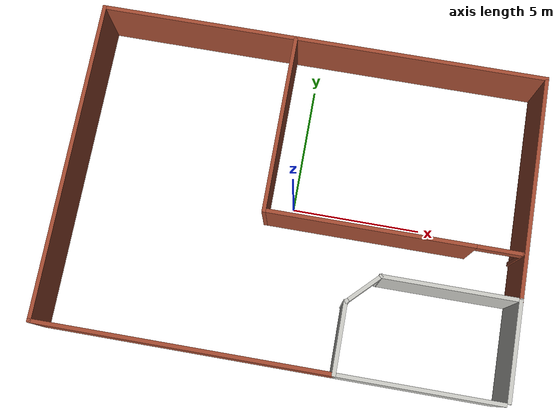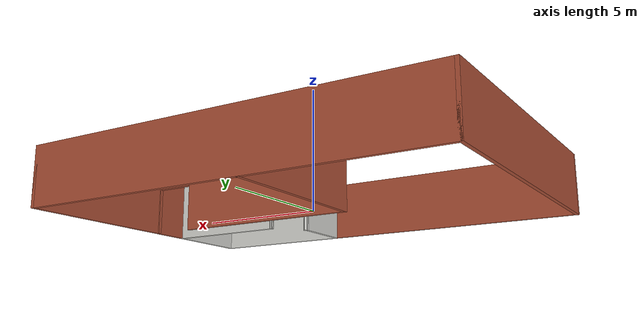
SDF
<?xml version='1.0'?>
<sdf version='1.7'>
  <model name='FloorPlan1BHK'>
    <pose>0.093457 0.037177 0 0 -0 0</pose>
    <link name='Wall_0'>
      <collision name='Wall_0_Collision'>
        <geometry>
          <box>
            <size>17.5 0.15 2.5</size>
          </box>
        </geometry>
        <pose>0 0 1.25 0 -0 0</pose>
      </collision>
      <visual name='Wall_0_Visual'>
        <pose>0 0 1.25 0 -0 0</pose>
        <geometry>
          <box>
            <size>17.5 0.15 2.5</size>
          </box>
        </geometry>
        <material>
          <script>
            <uri>file://media/materials/scripts/gazebo.material</uri>
            <name>Gazebo/Bricks</name>
          </script>
          <ambient>1 1 1 1</ambient>
        </material>
        <meta>
          <layer>0</layer>
        </meta>
      </visual>
      <pose>0 6.17506 0 0 -0 0</pose>
    </link>
    <link name='Wall_10'>
      <collision name='Wall_10_Collision'>
        <geometry>
          <box>
            <size>2.77214 0.15 2.5</size>
          </box>
        </geometry>
        <pose>0 0 1.25 0 -0 0</pose>
      </collision>
      <visual name='Wall_10_Visual'>
        <pose>0 0 1.25 0 -0 0</pose>
        <geometry>
          <box>
            <size>2.77214 0.15 2.5</size>
          </box>
        </geometry>
        <material>
          <script>
            <uri>file://media/materials/scripts/gazebo.material</uri>
            <name>Gazebo/CeilingTiled</name>
          </script>
          <ambient>1 1 1 1</ambient>
        </material>
        <meta>
          <layer>0</layer>
        </meta>
      </visual>
      <pose>2.42713 -4.86387 0 0 -0 1.56917</pose>
    </link>
    <link name='Wall_11'>
      <pose>2.99494 -2.98712 0 0 -0 0.785398</pose>
      <visual name='Wall_11_Visual_0'>
        <pose>-0.778435 0 1.25 0 -0 0</pose>
        <geometry>
          <box>
            <size>0.19313 0.15 2.5</size>
          </box>
        </geometry>
        <material>
          <script>
            <uri>file://media/materials/scripts/gazebo.material</uri>
            <name>Gazebo/CeilingTiled</name>
          </script>
          <ambient>1 1 1 1</ambient>
        </material>
        <meta>
          <layer>0</layer>
        </meta>
      </visual>
      <collision name='Wall_11_Collision_0'>
        <geometry>
          <box>
            <size>0.19313 0.15 2.5</size>
          </box>
        </geometry>
        <pose>-0.778435 0 1.25 0 -0 0</pose>
      </collision>
      <visual name='Wall_11_Visual_1'>
        <pose>0.80968 0 1.25 0 -0 0</pose>
        <geometry>
          <box>
            <size>0.13064 0.15 2.5</size>
          </box>
        </geometry>
        <material>
          <script>
            <uri>file://media/materials/scripts/gazebo.material</uri>
            <name>Gazebo/CeilingTiled</name>
          </script>
          <ambient>1 1 1 1</ambient>
        </material>
        <meta>
          <layer>0</layer>
        </meta>
      </visual>
      <collision name='Wall_11_Collision_1'>
        <geometry>
          <box>
            <size>0.13064 0.15 2.5</size>
          </box>
        </geometry>
        <pose>0.80968 0 1.25 0 -0 0</pose>
      </collision>
      <visual name='Wall_11_Visual_2'>
        <pose>0.031245 0 2.25 0 -0 0</pose>
        <geometry>
          <box>
            <size>1.42623 0.15 0.5</size>
          </box>
        </geometry>
        <material>
          <script>
            <uri>file://media/materials/scripts/gazebo.material</uri>
            <name>Gazebo/CeilingTiled</name>
          </script>
          <ambient>1 1 1 1</ambient>
        </material>
        <meta>
          <layer>0</layer>
        </meta>
      </visual>
      <collision name='Wall_11_Collision_2'>
        <geometry>
          <box>
            <size>1.42623 0.15 0.5</size>
          </box>
        </geometry>
        <pose>0.031245 0 2.25 0 -0 0</pose>
      </collision>
    </link>
    <link name='Wall_12'>
      <collision name='Wall_12_Collision'>
        <geometry>
          <box>
            <size>5.25 0.15 2.5</size>
          </box>
        </geometry>
        <pose>0 0 1.25 0 -0 0</pose>
      </collision>
      <visual name='Wall_12_Visual'>
        <pose>0 0 1.25 0 -0 0</pose>
        <geometry>
          <box>
            <size>5.25 0.15 2.5</size>
          </box>
        </geometry>
        <material>
          <script>
            <uri>file://media/materials/scripts/gazebo.material</uri>
            <name>Gazebo/CeilingTiled</name>
          </script>
          <ambient>1 1 1 1</ambient>
        </material>
        <meta>
          <layer>0</layer>
        </meta>
      </visual>
      <pose>6.11062 -2.42143 0 0 -0 0</pose>
    </link>
    <link name='Wall_14'>
      <collision name='Wall_14_Collision'>
        <geometry>
          <box>
            <size>11.25 0.15 2.5</size>
          </box>
        </geometry>
        <pose>0 0 1.25 0 -0 0</pose>
      </collision>
      <visual name='Wall_14_Visual'>
        <pose>0 0 1.25 0 -0 0</pose>
        <geometry>
          <box>
            <size>11.25 0.15 2.5</size>
          </box>
        </geometry>
        <material>
          <script>
            <uri>file://media/materials/scripts/gazebo.material</uri>
            <name>Gazebo/Bricks</name>
          </script>
          <ambient>1 1 1 1</ambient>
        </material>
        <meta>
          <layer>0</layer>
        </meta>
      </visual>
      <pose>-3.125 -6.17494 0 0 -0 3.14159</pose>
    </link>
    <link name='Wall_16'>
      <collision name='Wall_16_Collision'>
        <geometry>
          <box>
            <size>8.75 0.15 2.5</size>
          </box>
        </geometry>
        <pose>0 0 1.25 0 -0 0</pose>
      </collision>
      <visual name='Wall_16_Visual'>
        <pose>0 0 1.25 0 -0 0</pose>
        <geometry>
          <box>
            <size>8.75 0.15 2.5</size>
          </box>
        </geometry>
        <material>
          <script>
            <uri>file://media/materials/scripts/gazebo.material</uri>
            <name>Gazebo/Bricks</name>
          </script>
          <ambient>1 1 1 1</ambient>
        </material>
        <meta>
          <layer>0</layer>
        </meta>
      </visual>
      <pose>8.675 1.87506 0 0 -0 -1.5708</pose>
    </link>
    <link name='Wall_25'>
      <collision name='Wall_25_Collision'>
        <geometry>
          <box>
            <size>3.75 0.15 2.5</size>
          </box>
        </geometry>
        <pose>0 0 1.25 0 -0 0</pose>
      </collision>
      <visual name='Wall_25_Visual'>
        <pose>0 0 1.25 0 -0 0</pose>
        <geometry>
          <box>
            <size>3.75 0.15 2.5</size>
          </box>
        </geometry>
        <material>
          <script>
            <uri>file://media/materials/scripts/gazebo.material</uri>
            <name>Gazebo/CeilingTiled</name>
          </script>
          <ambient>1 1 1 1</ambient>
        </material>
        <meta>
          <layer>0</layer>
        </meta>
      </visual>
      <pose>8.66896 -4.25988 0 0 -0 1.5708</pose>
    </link>
    <link name='Wall_27'>
      <collision name='Wall_27_Collision'>
        <geometry>
          <box>
            <size>6.25 0.15 2.5</size>
          </box>
        </geometry>
        <pose>0 0 1.25 0 -0 0</pose>
      </collision>
      <visual name='Wall_27_Visual'>
        <pose>0 0 1.25 0 -0 0</pose>
        <geometry>
          <box>
            <size>6.25 0.15 2.5</size>
          </box>
        </geometry>
        <material>
          <script>
            <uri>file://media/materials/scripts/gazebo.material</uri>
            <name>Gazebo/CeilingTiled</name>
          </script>
          <ambient>1 1 1 1</ambient>
        </material>
        <meta>
          <layer>0</layer>
        </meta>
      </visual>
      <pose>5.475 -6.17494 0 0 -0 0</pose>
    </link>
    <link name='Wall_5'>
      <collision name='Wall_5_Collision'>
        <geometry>
          <box>
            <size>12.5 0.15 2.5</size>
          </box>
        </geometry>
        <pose>0 0 1.25 0 -0 0</pose>
      </collision>
      <visual name='Wall_5_Visual'>
        <pose>0 0 1.25 0 -0 0</pose>
        <geometry>
          <box>
            <size>12.5 0.15 2.5</size>
          </box>
        </geometry>
        <material>
          <script>
            <uri>file://media/materials/scripts/gazebo.material</uri>
            <name>Gazebo/Bricks</name>
          </script>
          <ambient>1 1 1 1</ambient>
        </material>
        <meta>
          <layer>0</layer>
        </meta>
      </visual>
      <pose>-8.675 6e-05 0 0 -0 1.5708</pose>
    </link>
    <link name='Wall_7'>
      <collision name='Wall_7_Collision'>
        <geometry>
          <box>
            <size>7 0.15 2.5</size>
          </box>
        </geometry>
        <pose>0 0 1.25 0 -0 0</pose>
      </collision>
      <visual name='Wall_7_Visual'>
        <pose>0 0 1.25 0 -0 0</pose>
        <geometry>
          <box>
            <size>7 0.15 2.5</size>
          </box>
        </geometry>
        <material>
          <script>
            <uri>file://media/materials/scripts/gazebo.material</uri>
            <name>Gazebo/Bricks</name>
          </script>
          <ambient>1 1 1 1</ambient>
        </material>
        <meta>
          <layer>0</layer>
        </meta>
      </visual>
      <pose>-1.08862 2.68888 0 0 -0 -1.5708</pose>
    </link>
    <link name='Wall_8'>
      <pose>3.71138 -0.73612 0 0 -0 0</pose>
      <visual name='Wall_8_Visual_0'>
        <pose>-0.867842 0 1.25 0 -0 0</pose>
        <geometry>
          <box>
            <size>8.01432 0.15 2.5</size>
          </box>
        </geometry>
        <material>
          <script>
            <uri>file://media/materials/scripts/gazebo.material</uri>
            <name>Gazebo/Bricks</name>
          </script>
          <ambient>1 1 1 1</ambient>
        </material>
        <meta>
          <layer>0</layer>
        </meta>
      </visual>
      <collision name='Wall_8_Collision_0'>
        <geometry>
          <box>
            <size>8.01432 0.15 2.5</size>
          </box>
        </geometry>
        <pose>-0.867842 0 1.25 0 -0 0</pose>
      </collision>
      <visual name='Wall_8_Visual_1'>
        <pose>4.84937 0 1.25 0 -0 0</pose>
        <geometry>
          <box>
            <size>0.051255 0.15 2.5</size>
          </box>
        </geometry>
        <material>
          <script>
            <uri>file://media/materials/scripts/gazebo.material</uri>
            <name>Gazebo/Bricks</name>
          </script>
          <ambient>1 1 1 1</ambient>
        </material>
        <meta>
          <layer>0</layer>
        </meta>
      </visual>
      <collision name='Wall_8_Collision_1'>
        <geometry>
          <box>
            <size>0.051255 0.15 2.5</size>
          </box>
        </geometry>
        <pose>4.84937 0 1.25 0 -0 0</pose>
      </collision>
      <visual name='Wall_8_Visual_2'>
        <pose>3.98153 0 2.25 0 -0 0</pose>
        <geometry>
          <box>
            <size>1.68443 0.15 0.5</size>
          </box>
        </geometry>
        <material>
          <script>
            <uri>file://media/materials/scripts/gazebo.material</uri>
            <name>Gazebo/Bricks</name>
          </script>
          <ambient>1 1 1 1</ambient>
        </material>
        <meta>
          <layer>0</layer>
        </meta>
      </visual>
      <collision name='Wall_8_Collision_2'>
        <geometry>
          <box>
            <size>1.68443 0.15 0.5</size>
          </box>
        </geometry>
        <pose>3.98153 0 2.25 0 -0 0</pose>
      </collision>
    </link>
    <static>1</static>
  </model>
</sdf>
